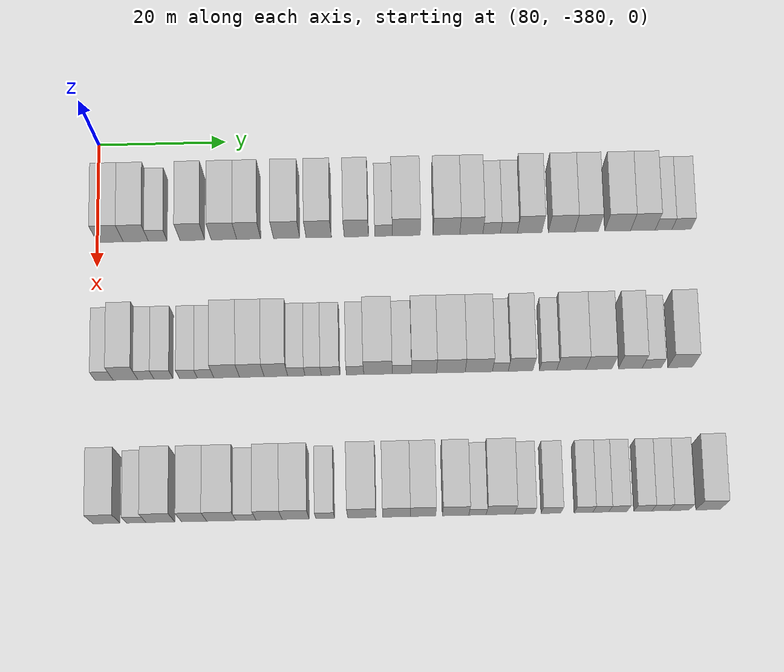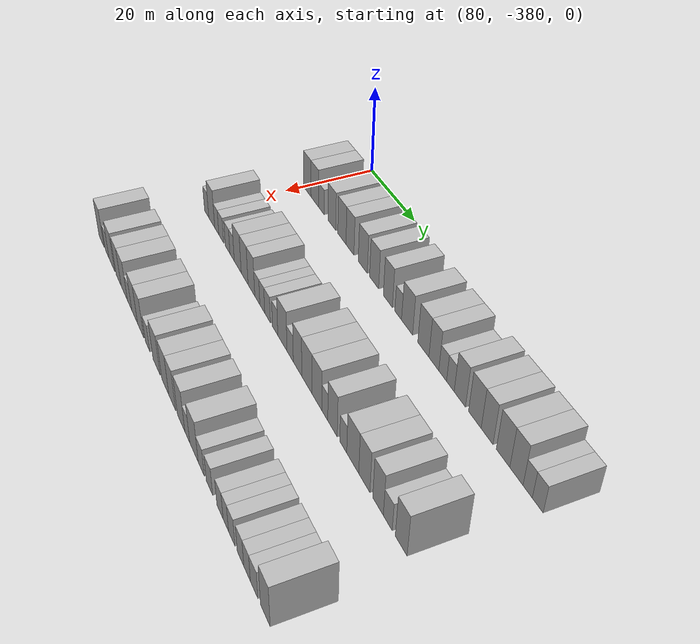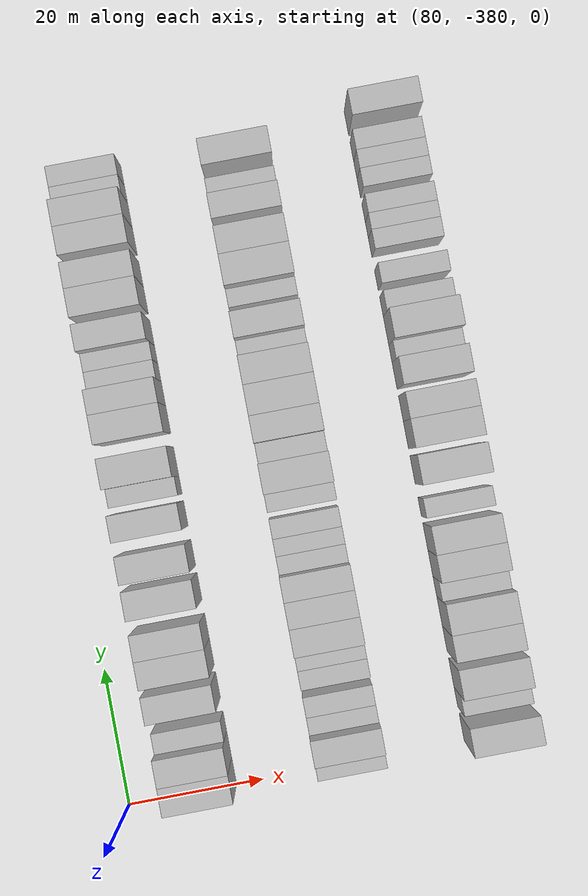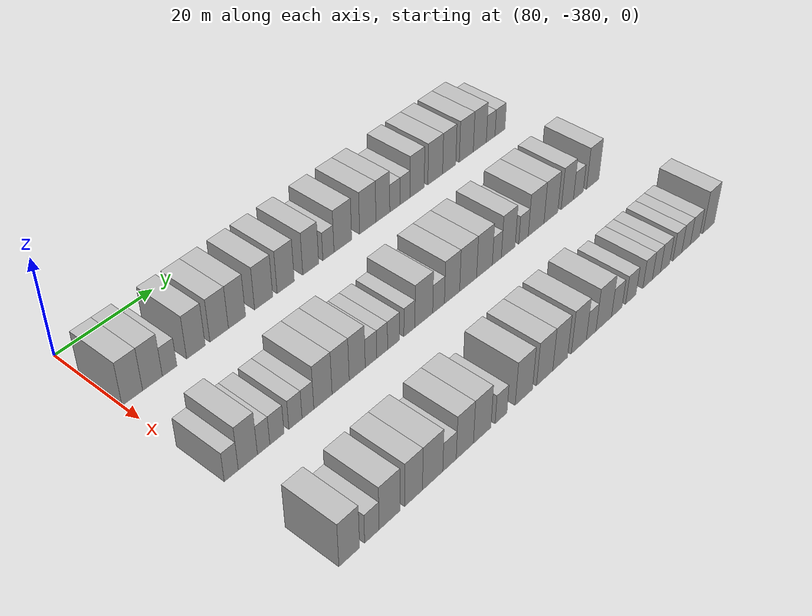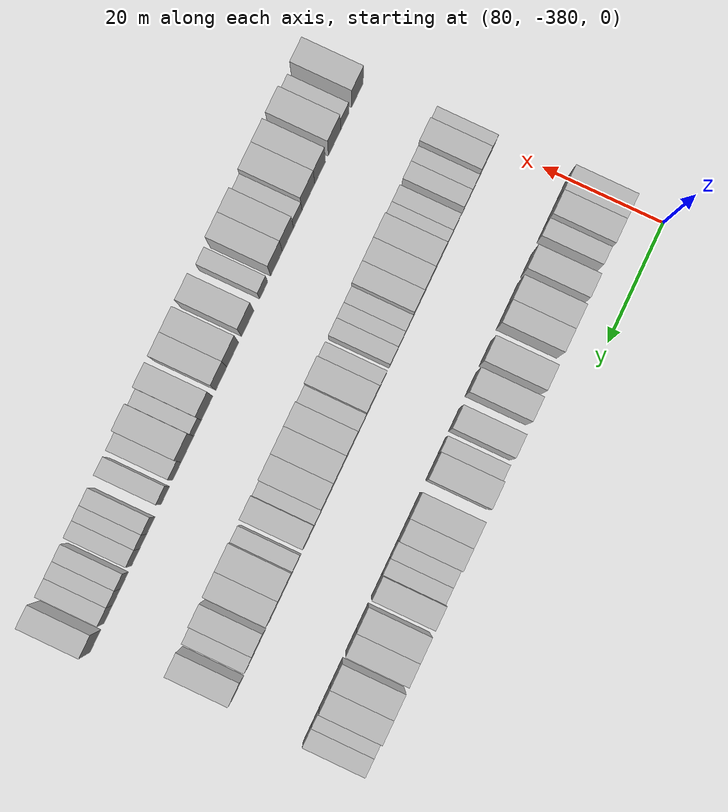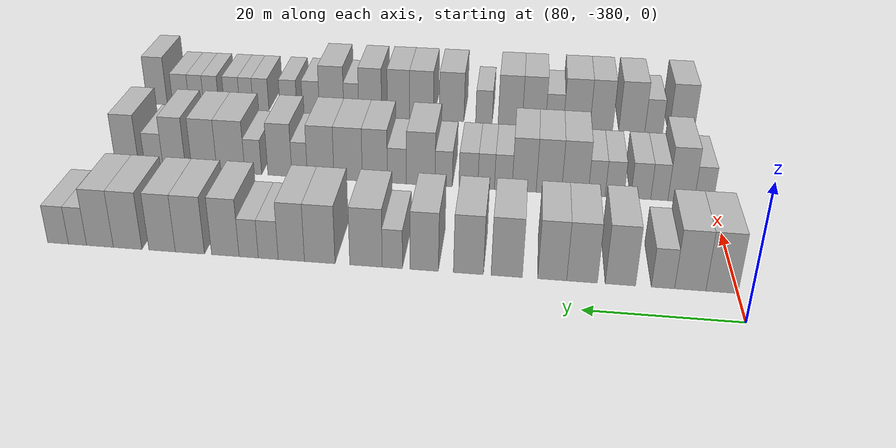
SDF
<sdf version="1.6">
 <world name="default">
  <model name="building_581">
   <static>1</static>
   <pose>91.0000 -377.9903 0 0.000000 0.000000 0.000000</pose>
   <link name="link">
    <pose>0 0 4.50 0 0 0</pose>
    <collision name="collision"><geometry><box><size>10.0000 4.0195 9.0000</size></box></geometry></collision>
    <visual name="visual">
     <cast_shadows>0</cast_shadows>
     <geometry><box><size>10.0000 4.0195 9.0000</size></box></geometry>
     <material>
      <script>
       <uri>model://HANNAS_wall/materials/scripts</uri>
       <uri>model://HANNAS_wall/materials/textures</uri>
       <name>vrc/HANNAS_wall</name>
      </script>
     </material>
    </visual>
   </link>
  </model>
  <model name="building_582">
   <static>1</static>
   <pose>91.0000 -374.0209 0 0.000000 0.000000 0.000000</pose>
   <link name="link">
    <pose>0 0 4.50 0 0 0</pose>
    <collision name="collision"><geometry><box><size>10.0000 3.9193 9.0000</size></box></geometry></collision>
    <visual name="visual">
     <cast_shadows>0</cast_shadows>
     <geometry><box><size>10.0000 3.9193 9.0000</size></box></geometry>
     <material>
      <script>
       <uri>model://HANNAS_wall/materials/scripts</uri>
       <uri>model://HANNAS_wall/materials/textures</uri>
       <name>vrc/HANNAS_wall</name>
      </script>
     </material>
    </visual>
   </link>
  </model>
  <model name="building_583">
   <static>1</static>
   <pose>91.0000 -370.5944 0 0.000000 0.000000 0.000000</pose>
   <link name="link">
    <pose>0 0 3.00 0 0 0</pose>
    <collision name="collision"><geometry><box><size>10.0000 2.9337 6.0000</size></box></geometry></collision>
    <visual name="visual">
     <cast_shadows>0</cast_shadows>
     <geometry><box><size>10.0000 2.9337 6.0000</size></box></geometry>
     <material>
      <script>
       <uri>model://HANNAS_wall/materials/scripts</uri>
       <uri>model://HANNAS_wall/materials/textures</uri>
       <name>vrc/HANNAS_wall</name>
      </script>
     </material>
    </visual>
   </link>
  </model>
  <model name="building_584">
   <static>1</static>
   <pose>91.0000 -365.1928 0 0.000000 0.000000 0.000000</pose>
   <link name="link">
    <pose>0 0 4.50 0 0 0</pose>
    <collision name="collision"><geometry><box><size>10.0000 3.8694 9.0000</size></box></geometry></collision>
    <visual name="visual">
     <cast_shadows>0</cast_shadows>
     <geometry><box><size>10.0000 3.8694 9.0000</size></box></geometry>
     <material>
      <script>
       <uri>model://HANNAS_wall/materials/scripts</uri>
       <uri>model://HANNAS_wall/materials/textures</uri>
       <name>vrc/HANNAS_wall</name>
      </script>
     </material>
    </visual>
   </link>
  </model>
  <model name="building_585">
   <static>1</static>
   <pose>91.0000 -360.2808 0 0.000000 0.000000 0.000000</pose>
   <link name="link">
    <pose>0 0 4.50 0 0 0</pose>
    <collision name="collision"><geometry><box><size>10.0000 3.9546 9.0000</size></box></geometry></collision>
    <visual name="visual">
     <cast_shadows>0</cast_shadows>
     <geometry><box><size>10.0000 3.9546 9.0000</size></box></geometry>
     <material>
      <script>
       <uri>model://HANNAS_wall/materials/scripts</uri>
       <uri>model://HANNAS_wall/materials/textures</uri>
       <name>vrc/HANNAS_wall</name>
      </script>
     </material>
    </visual>
   </link>
  </model>
  <model name="building_586">
   <static>1</static>
   <pose>91.0000 -356.4320 0 0.000000 0.000000 0.000000</pose>
   <link name="link">
    <pose>0 0 4.50 0 0 0</pose>
    <collision name="collision"><geometry><box><size>10.0000 3.7430 9.0000</size></box></geometry></collision>
    <visual name="visual">
     <cast_shadows>0</cast_shadows>
     <geometry><box><size>10.0000 3.7430 9.0000</size></box></geometry>
     <material>
      <script>
       <uri>model://HANNAS_wall/materials/scripts</uri>
       <uri>model://HANNAS_wall/materials/textures</uri>
       <name>vrc/HANNAS_wall</name>
      </script>
     </material>
    </visual>
   </link>
  </model>
  <model name="building_587">
   <static>1</static>
   <pose>91.0000 -350.5185 0 0.000000 0.000000 0.000000</pose>
   <link name="link">
    <pose>0 0 4.50 0 0 0</pose>
    <collision name="collision"><geometry><box><size>10.0000 4.0840 9.0000</size></box></geometry></collision>
    <visual name="visual">
     <cast_shadows>0</cast_shadows>
     <geometry><box><size>10.0000 4.0840 9.0000</size></box></geometry>
     <material>
      <script>
       <uri>model://HANNAS_wall/materials/scripts</uri>
       <uri>model://HANNAS_wall/materials/textures</uri>
       <name>vrc/HANNAS_wall</name>
      </script>
     </material>
    </visual>
   </link>
  </model>
  <model name="building_588">
   <static>1</static>
   <pose>91.0000 -345.4982 0 0.000000 0.000000 0.000000</pose>
   <link name="link">
    <pose>0 0 4.50 0 0 0</pose>
    <collision name="collision"><geometry><box><size>10.0000 3.9566 9.0000</size></box></geometry></collision>
    <visual name="visual">
     <cast_shadows>0</cast_shadows>
     <geometry><box><size>10.0000 3.9566 9.0000</size></box></geometry>
     <material>
      <script>
       <uri>model://HANNAS_wall/materials/scripts</uri>
       <uri>model://HANNAS_wall/materials/textures</uri>
       <name>vrc/HANNAS_wall</name>
      </script>
     </material>
    </visual>
   </link>
  </model>
  <model name="building_589">
   <static>1</static>
   <pose>91.0000 -339.6255 0 0.000000 0.000000 0.000000</pose>
   <link name="link">
    <pose>0 0 4.50 0 0 0</pose>
    <collision name="collision"><geometry><box><size>10.0000 3.7889 9.0000</size></box></geometry></collision>
    <visual name="visual">
     <cast_shadows>0</cast_shadows>
     <geometry><box><size>10.0000 3.7889 9.0000</size></box></geometry>
     <material>
      <script>
       <uri>model://HANNAS_wall/materials/scripts</uri>
       <uri>model://HANNAS_wall/materials/textures</uri>
       <name>vrc/HANNAS_wall</name>
      </script>
     </material>
    </visual>
   </link>
  </model>
  <model name="building_590">
   <static>1</static>
   <pose>91.0000 -335.3784 0 0.000000 0.000000 0.000000</pose>
   <link name="link">
    <pose>0 0 3.00 0 0 0</pose>
    <collision name="collision"><geometry><box><size>10.0000 2.7053 6.0000</size></box></geometry></collision>
    <visual name="visual">
     <cast_shadows>0</cast_shadows>
     <geometry><box><size>10.0000 2.7053 6.0000</size></box></geometry>
     <material>
      <script>
       <uri>model://HANNAS_wall/materials/scripts</uri>
       <uri>model://HANNAS_wall/materials/textures</uri>
       <name>vrc/HANNAS_wall</name>
      </script>
     </material>
    </visual>
   </link>
  </model>
  <model name="building_591">
   <static>1</static>
   <pose>91.0000 -331.8445 0 0.000000 0.000000 0.000000</pose>
   <link name="link">
    <pose>0 0 4.50 0 0 0</pose>
    <collision name="collision"><geometry><box><size>10.0000 4.3625 9.0000</size></box></geometry></collision>
    <visual name="visual">
     <cast_shadows>0</cast_shadows>
     <geometry><box><size>10.0000 4.3625 9.0000</size></box></geometry>
     <material>
      <script>
       <uri>model://HANNAS_wall/materials/scripts</uri>
       <uri>model://HANNAS_wall/materials/textures</uri>
       <name>vrc/HANNAS_wall</name>
      </script>
     </material>
    </visual>
   </link>
  </model>
  <model name="building_592">
   <static>1</static>
   <pose>91.0000 -325.5827 0 0.000000 0.000000 0.000000</pose>
   <link name="link">
    <pose>0 0 4.50 0 0 0</pose>
    <collision name="collision"><geometry><box><size>10.0000 4.1612 9.0000</size></box></geometry></collision>
    <visual name="visual">
     <cast_shadows>0</cast_shadows>
     <geometry><box><size>10.0000 4.1612 9.0000</size></box></geometry>
     <material>
      <script>
       <uri>model://HANNAS_wall/materials/scripts</uri>
       <uri>model://HANNAS_wall/materials/textures</uri>
       <name>vrc/HANNAS_wall</name>
      </script>
     </material>
    </visual>
   </link>
  </model>
  <model name="building_593">
   <static>1</static>
   <pose>91.0000 -321.7015 0 0.000000 0.000000 0.000000</pose>
   <link name="link">
    <pose>0 0 4.50 0 0 0</pose>
    <collision name="collision"><geometry><box><size>10.0000 3.6012 9.0000</size></box></geometry></collision>
    <visual name="visual">
     <cast_shadows>0</cast_shadows>
     <geometry><box><size>10.0000 3.6012 9.0000</size></box></geometry>
     <material>
      <script>
       <uri>model://HANNAS_wall/materials/scripts</uri>
       <uri>model://HANNAS_wall/materials/textures</uri>
       <name>vrc/HANNAS_wall</name>
      </script>
     </material>
    </visual>
   </link>
  </model>
  <model name="building_594">
   <static>1</static>
   <pose>91.0000 -318.5280 0 0.000000 0.000000 0.000000</pose>
   <link name="link">
    <pose>0 0 3.00 0 0 0</pose>
    <collision name="collision"><geometry><box><size>10.0000 2.7459 6.0000</size></box></geometry></collision>
    <visual name="visual">
     <cast_shadows>0</cast_shadows>
     <geometry><box><size>10.0000 2.7459 6.0000</size></box></geometry>
     <material>
      <script>
       <uri>model://HANNAS_wall/materials/scripts</uri>
       <uri>model://HANNAS_wall/materials/textures</uri>
       <name>vrc/HANNAS_wall</name>
      </script>
     </material>
    </visual>
   </link>
  </model>
  <model name="building_595">
   <static>1</static>
   <pose>91.0000 -315.8249 0 0.000000 0.000000 0.000000</pose>
   <link name="link">
    <pose>0 0 3.00 0 0 0</pose>
    <collision name="collision"><geometry><box><size>10.0000 2.6602 6.0000</size></box></geometry></collision>
    <visual name="visual">
     <cast_shadows>0</cast_shadows>
     <geometry><box><size>10.0000 2.6602 6.0000</size></box></geometry>
     <material>
      <script>
       <uri>model://HANNAS_wall/materials/scripts</uri>
       <uri>model://HANNAS_wall/materials/textures</uri>
       <name>vrc/HANNAS_wall</name>
      </script>
     </material>
    </visual>
   </link>
  </model>
  <model name="building_596">
   <static>1</static>
   <pose>91.0000 -312.5856 0 0.000000 0.000000 0.000000</pose>
   <link name="link">
    <pose>0 0 4.50 0 0 0</pose>
    <collision name="collision"><geometry><box><size>10.0000 3.8185 9.0000</size></box></geometry></collision>
    <visual name="visual">
     <cast_shadows>0</cast_shadows>
     <geometry><box><size>10.0000 3.8185 9.0000</size></box></geometry>
     <material>
      <script>
       <uri>model://HANNAS_wall/materials/scripts</uri>
       <uri>model://HANNAS_wall/materials/textures</uri>
       <name>vrc/HANNAS_wall</name>
      </script>
     </material>
    </visual>
   </link>
  </model>
  <model name="building_597">
   <static>1</static>
   <pose>91.0000 -307.6312 0 0.000000 0.000000 0.000000</pose>
   <link name="link">
    <pose>0 0 4.50 0 0 0</pose>
    <collision name="collision"><geometry><box><size>10.0000 4.0904 9.0000</size></box></geometry></collision>
    <visual name="visual">
     <cast_shadows>0</cast_shadows>
     <geometry><box><size>10.0000 4.0904 9.0000</size></box></geometry>
     <material>
      <script>
       <uri>model://HANNAS_wall/materials/scripts</uri>
       <uri>model://HANNAS_wall/materials/textures</uri>
       <name>vrc/HANNAS_wall</name>
      </script>
     </material>
    </visual>
   </link>
  </model>
  <model name="building_598">
   <static>1</static>
   <pose>91.0000 -303.7231 0 0.000000 0.000000 0.000000</pose>
   <link name="link">
    <pose>0 0 4.50 0 0 0</pose>
    <collision name="collision"><geometry><box><size>10.0000 3.7257 9.0000</size></box></geometry></collision>
    <visual name="visual">
     <cast_shadows>0</cast_shadows>
     <geometry><box><size>10.0000 3.7257 9.0000</size></box></geometry>
     <material>
      <script>
       <uri>model://HANNAS_wall/materials/scripts</uri>
       <uri>model://HANNAS_wall/materials/textures</uri>
       <name>vrc/HANNAS_wall</name>
      </script>
     </material>
    </visual>
   </link>
  </model>
  <model name="building_599">
   <static>1</static>
   <pose>91.0000 -298.8303 0 0.000000 0.000000 0.000000</pose>
   <link name="link">
    <pose>0 0 4.50 0 0 0</pose>
    <collision name="collision"><geometry><box><size>10.0000 4.0600 9.0000</size></box></geometry></collision>
    <visual name="visual">
     <cast_shadows>0</cast_shadows>
     <geometry><box><size>10.0000 4.0600 9.0000</size></box></geometry>
     <material>
      <script>
       <uri>model://HANNAS_wall/materials/scripts</uri>
       <uri>model://HANNAS_wall/materials/textures</uri>
       <name>vrc/HANNAS_wall</name>
      </script>
     </material>
    </visual>
   </link>
  </model>
  <model name="building_600">
   <static>1</static>
   <pose>91.0000 -294.8855 0 0.000000 0.000000 0.000000</pose>
   <link name="link">
    <pose>0 0 4.50 0 0 0</pose>
    <collision name="collision"><geometry><box><size>10.0000 3.8296 9.0000</size></box></geometry></collision>
    <visual name="visual">
     <cast_shadows>0</cast_shadows>
     <geometry><box><size>10.0000 3.8296 9.0000</size></box></geometry>
     <material>
      <script>
       <uri>model://HANNAS_wall/materials/scripts</uri>
       <uri>model://HANNAS_wall/materials/textures</uri>
       <name>vrc/HANNAS_wall</name>
      </script>
     </material>
    </visual>
   </link>
  </model>
  <model name="building_601">
   <static>1</static>
   <pose>91.0000 -291.6663 0 0.000000 0.000000 0.000000</pose>
   <link name="link">
    <pose>0 0 3.00 0 0 0</pose>
    <collision name="collision"><geometry><box><size>10.0000 2.6087 6.0000</size></box></geometry></collision>
    <visual name="visual">
     <cast_shadows>0</cast_shadows>
     <geometry><box><size>10.0000 2.6087 6.0000</size></box></geometry>
     <material>
      <script>
       <uri>model://HANNAS_wall/materials/scripts</uri>
       <uri>model://HANNAS_wall/materials/textures</uri>
       <name>vrc/HANNAS_wall</name>
      </script>
     </material>
    </visual>
   </link>
  </model>
  <model name="building_602">
   <static>1</static>
   <pose>91.0000 -288.8627 0 0.000000 0.000000 0.000000</pose>
   <link name="link">
    <pose>0 0 3.00 0 0 0</pose>
    <collision name="collision"><geometry><box><size>10.0000 2.9985 6.0000</size></box></geometry></collision>
    <visual name="visual">
     <cast_shadows>0</cast_shadows>
     <geometry><box><size>10.0000 2.9985 6.0000</size></box></geometry>
     <material>
      <script>
       <uri>model://HANNAS_wall/materials/scripts</uri>
       <uri>model://HANNAS_wall/materials/textures</uri>
       <name>vrc/HANNAS_wall</name>
      </script>
     </material>
    </visual>
   </link>
  </model>
  <model name="building_770">
   <static>1</static>
   <pose>113.0000 -378.6374 0 0.000000 0.000000 0.000000</pose>
   <link name="link">
    <pose>0 0 3.00 0 0 0</pose>
    <collision name="collision"><geometry><box><size>10.0000 2.7252 6.0000</size></box></geometry></collision>
    <visual name="visual">
     <cast_shadows>0</cast_shadows>
     <geometry><box><size>10.0000 2.7252 6.0000</size></box></geometry>
     <material>
      <script>
       <uri>model://HANNAS_wall/materials/scripts</uri>
       <uri>model://HANNAS_wall/materials/textures</uri>
       <name>vrc/HANNAS_wall</name>
      </script>
     </material>
    </visual>
   </link>
  </model>
  <model name="building_771">
   <static>1</static>
   <pose>113.0000 -375.3818 0 0.000000 0.000000 0.000000</pose>
   <link name="link">
    <pose>0 0 4.50 0 0 0</pose>
    <collision name="collision"><geometry><box><size>10.0000 3.7861 9.0000</size></box></geometry></collision>
    <visual name="visual">
     <cast_shadows>0</cast_shadows>
     <geometry><box><size>10.0000 3.7861 9.0000</size></box></geometry>
     <material>
      <script>
       <uri>model://HANNAS_wall/materials/scripts</uri>
       <uri>model://HANNAS_wall/materials/textures</uri>
       <name>vrc/HANNAS_wall</name>
      </script>
     </material>
    </visual>
   </link>
  </model>
  <model name="building_772">
   <static>1</static>
   <pose>113.0000 -372.2384 0 0.000000 0.000000 0.000000</pose>
   <link name="link">
    <pose>0 0 3.00 0 0 0</pose>
    <collision name="collision"><geometry><box><size>10.0000 2.5006 6.0000</size></box></geometry></collision>
    <visual name="visual">
     <cast_shadows>0</cast_shadows>
     <geometry><box><size>10.0000 2.5006 6.0000</size></box></geometry>
     <material>
      <script>
       <uri>model://HANNAS_wall/materials/scripts</uri>
       <uri>model://HANNAS_wall/materials/textures</uri>
       <name>vrc/HANNAS_wall</name>
      </script>
     </material>
    </visual>
   </link>
  </model>
  <model name="building_773">
   <static>1</static>
   <pose>113.0000 -369.5360 0 0.000000 0.000000 0.000000</pose>
   <link name="link">
    <pose>0 0 3.00 0 0 0</pose>
    <collision name="collision"><geometry><box><size>10.0000 2.9043 6.0000</size></box></geometry></collision>
    <visual name="visual">
     <cast_shadows>0</cast_shadows>
     <geometry><box><size>10.0000 2.9043 6.0000</size></box></geometry>
     <material>
      <script>
       <uri>model://HANNAS_wall/materials/scripts</uri>
       <uri>model://HANNAS_wall/materials/textures</uri>
       <name>vrc/HANNAS_wall</name>
      </script>
     </material>
    </visual>
   </link>
  </model>
  <model name="building_774">
   <static>1</static>
   <pose>113.0000 -365.7093 0 0.000000 0.000000 0.000000</pose>
   <link name="link">
    <pose>0 0 3.00 0 0 0</pose>
    <collision name="collision"><geometry><box><size>10.0000 2.7491 6.0000</size></box></geometry></collision>
    <visual name="visual">
     <cast_shadows>0</cast_shadows>
     <geometry><box><size>10.0000 2.7491 6.0000</size></box></geometry>
     <material>
      <script>
       <uri>model://HANNAS_wall/materials/scripts</uri>
       <uri>model://HANNAS_wall/materials/textures</uri>
       <name>vrc/HANNAS_wall</name>
      </script>
     </material>
    </visual>
   </link>
  </model>
  <model name="building_775">
   <static>1</static>
   <pose>113.0000 -363.0858 0 0.000000 0.000000 0.000000</pose>
   <link name="link">
    <pose>0 0 3.00 0 0 0</pose>
    <collision name="collision"><geometry><box><size>10.0000 2.4980 6.0000</size></box></geometry></collision>
    <visual name="visual">
     <cast_shadows>0</cast_shadows>
     <geometry><box><size>10.0000 2.4980 6.0000</size></box></geometry>
     <material>
      <script>
       <uri>model://HANNAS_wall/materials/scripts</uri>
       <uri>model://HANNAS_wall/materials/textures</uri>
       <name>vrc/HANNAS_wall</name>
      </script>
     </material>
    </visual>
   </link>
  </model>
  <model name="building_776">
   <static>1</static>
   <pose>113.0000 -359.8690 0 0.000000 0.000000 0.000000</pose>
   <link name="link">
    <pose>0 0 4.50 0 0 0</pose>
    <collision name="collision"><geometry><box><size>10.0000 3.9355 9.0000</size></box></geometry></collision>
    <visual name="visual">
     <cast_shadows>0</cast_shadows>
     <geometry><box><size>10.0000 3.9355 9.0000</size></box></geometry>
     <material>
      <script>
       <uri>model://HANNAS_wall/materials/scripts</uri>
       <uri>model://HANNAS_wall/materials/textures</uri>
       <name>vrc/HANNAS_wall</name>
      </script>
     </material>
    </visual>
   </link>
  </model>
  <model name="building_777">
   <static>1</static>
   <pose>113.0000 -356.0148 0 0.000000 0.000000 0.000000</pose>
   <link name="link">
    <pose>0 0 4.50 0 0 0</pose>
    <collision name="collision"><geometry><box><size>10.0000 3.7728 9.0000</size></box></geometry></collision>
    <visual name="visual">
     <cast_shadows>0</cast_shadows>
     <geometry><box><size>10.0000 3.7728 9.0000</size></box></geometry>
     <material>
      <script>
       <uri>model://HANNAS_wall/materials/scripts</uri>
       <uri>model://HANNAS_wall/materials/textures</uri>
       <name>vrc/HANNAS_wall</name>
      </script>
     </material>
    </visual>
   </link>
  </model>
  <model name="building_778">
   <static>1</static>
   <pose>113.0000 -352.3270 0 0.000000 0.000000 0.000000</pose>
   <link name="link">
    <pose>0 0 4.50 0 0 0</pose>
    <collision name="collision"><geometry><box><size>10.0000 3.6028 9.0000</size></box></geometry></collision>
    <visual name="visual">
     <cast_shadows>0</cast_shadows>
     <geometry><box><size>10.0000 3.6028 9.0000</size></box></geometry>
     <material>
      <script>
       <uri>model://HANNAS_wall/materials/scripts</uri>
       <uri>model://HANNAS_wall/materials/textures</uri>
       <name>vrc/HANNAS_wall</name>
      </script>
     </material>
    </visual>
   </link>
  </model>
  <model name="building_779">
   <static>1</static>
   <pose>113.0000 -349.2012 0 0.000000 0.000000 0.000000</pose>
   <link name="link">
    <pose>0 0 3.00 0 0 0</pose>
    <collision name="collision"><geometry><box><size>10.0000 2.6489 6.0000</size></box></geometry></collision>
    <visual name="visual">
     <cast_shadows>0</cast_shadows>
     <geometry><box><size>10.0000 2.6489 6.0000</size></box></geometry>
     <material>
      <script>
       <uri>model://HANNAS_wall/materials/scripts</uri>
       <uri>model://HANNAS_wall/materials/textures</uri>
       <name>vrc/HANNAS_wall</name>
      </script>
     </material>
    </visual>
   </link>
  </model>
  <model name="building_780">
   <static>1</static>
   <pose>113.0000 -346.6284 0 0.000000 0.000000 0.000000</pose>
   <link name="link">
    <pose>0 0 3.00 0 0 0</pose>
    <collision name="collision"><geometry><box><size>10.0000 2.4969 6.0000</size></box></geometry></collision>
    <visual name="visual">
     <cast_shadows>0</cast_shadows>
     <geometry><box><size>10.0000 2.4969 6.0000</size></box></geometry>
     <material>
      <script>
       <uri>model://HANNAS_wall/materials/scripts</uri>
       <uri>model://HANNAS_wall/materials/textures</uri>
       <name>vrc/HANNAS_wall</name>
      </script>
     </material>
    </visual>
   </link>
  </model>
  <model name="building_781">
   <static>1</static>
   <pose>113.0000 -343.9488 0 0.000000 0.000000 0.000000</pose>
   <link name="link">
    <pose>0 0 3.00 0 0 0</pose>
    <collision name="collision"><geometry><box><size>10.0000 2.8623 6.0000</size></box></geometry></collision>
    <visual name="visual">
     <cast_shadows>0</cast_shadows>
     <geometry><box><size>10.0000 2.8623 6.0000</size></box></geometry>
     <material>
      <script>
       <uri>model://HANNAS_wall/materials/scripts</uri>
       <uri>model://HANNAS_wall/materials/textures</uri>
       <name>vrc/HANNAS_wall</name>
      </script>
     </material>
    </visual>
   </link>
  </model>
  <model name="building_782">
   <static>1</static>
   <pose>113.0000 -340.1968 0 0.000000 0.000000 0.000000</pose>
   <link name="link">
    <pose>0 0 3.00 0 0 0</pose>
    <collision name="collision"><geometry><box><size>10.0000 2.6417 6.0000</size></box></geometry></collision>
    <visual name="visual">
     <cast_shadows>0</cast_shadows>
     <geometry><box><size>10.0000 2.6417 6.0000</size></box></geometry>
     <material>
      <script>
       <uri>model://HANNAS_wall/materials/scripts</uri>
       <uri>model://HANNAS_wall/materials/textures</uri>
       <name>vrc/HANNAS_wall</name>
      </script>
     </material>
    </visual>
   </link>
  </model>
  <model name="building_783">
   <static>1</static>
   <pose>113.0000 -336.6961 0 0.000000 0.000000 0.000000</pose>
   <link name="link">
    <pose>0 0 4.50 0 0 0</pose>
    <collision name="collision"><geometry><box><size>10.0000 4.3596 9.0000</size></box></geometry></collision>
    <visual name="visual">
     <cast_shadows>0</cast_shadows>
     <geometry><box><size>10.0000 4.3596 9.0000</size></box></geometry>
     <material>
      <script>
       <uri>model://HANNAS_wall/materials/scripts</uri>
       <uri>model://HANNAS_wall/materials/textures</uri>
       <name>vrc/HANNAS_wall</name>
      </script>
     </material>
    </visual>
   </link>
  </model>
  <model name="building_784">
   <static>1</static>
   <pose>113.0000 -333.0528 0 0.000000 0.000000 0.000000</pose>
   <link name="link">
    <pose>0 0 3.00 0 0 0</pose>
    <collision name="collision"><geometry><box><size>10.0000 2.9271 6.0000</size></box></geometry></collision>
    <visual name="visual">
     <cast_shadows>0</cast_shadows>
     <geometry><box><size>10.0000 2.9271 6.0000</size></box></geometry>
     <material>
      <script>
       <uri>model://HANNAS_wall/materials/scripts</uri>
       <uri>model://HANNAS_wall/materials/textures</uri>
       <name>vrc/HANNAS_wall</name>
      </script>
     </material>
    </visual>
   </link>
  </model>
  <model name="building_785">
   <static>1</static>
   <pose>113.0000 -329.6588 0 0.000000 0.000000 0.000000</pose>
   <link name="link">
    <pose>0 0 4.50 0 0 0</pose>
    <collision name="collision"><geometry><box><size>10.0000 3.8608 9.0000</size></box></geometry></collision>
    <visual name="visual">
     <cast_shadows>0</cast_shadows>
     <geometry><box><size>10.0000 3.8608 9.0000</size></box></geometry>
     <material>
      <script>
       <uri>model://HANNAS_wall/materials/scripts</uri>
       <uri>model://HANNAS_wall/materials/textures</uri>
       <name>vrc/HANNAS_wall</name>
      </script>
     </material>
    </visual>
   </link>
  </model>
  <model name="building_786">
   <static>1</static>
   <pose>113.0000 -325.5356 0 0.000000 0.000000 0.000000</pose>
   <link name="link">
    <pose>0 0 4.50 0 0 0</pose>
    <collision name="collision"><geometry><box><size>10.0000 4.3856 9.0000</size></box></geometry></collision>
    <visual name="visual">
     <cast_shadows>0</cast_shadows>
     <geometry><box><size>10.0000 4.3856 9.0000</size></box></geometry>
     <material>
      <script>
       <uri>model://HANNAS_wall/materials/scripts</uri>
       <uri>model://HANNAS_wall/materials/textures</uri>
       <name>vrc/HANNAS_wall</name>
      </script>
     </material>
    </visual>
   </link>
  </model>
  <model name="building_787">
   <static>1</static>
   <pose>113.0000 -321.2570 0 0.000000 0.000000 0.000000</pose>
   <link name="link">
    <pose>0 0 4.50 0 0 0</pose>
    <collision name="collision"><geometry><box><size>10.0000 4.1717 9.0000</size></box></geometry></collision>
    <visual name="visual">
     <cast_shadows>0</cast_shadows>
     <geometry><box><size>10.0000 4.1717 9.0000</size></box></geometry>
     <material>
      <script>
       <uri>model://HANNAS_wall/materials/scripts</uri>
       <uri>model://HANNAS_wall/materials/textures</uri>
       <name>vrc/HANNAS_wall</name>
      </script>
     </material>
    </visual>
   </link>
  </model>
  <model name="building_788">
   <static>1</static>
   <pose>113.0000 -317.9590 0 0.000000 0.000000 0.000000</pose>
   <link name="link">
    <pose>0 0 3.00 0 0 0</pose>
    <collision name="collision"><geometry><box><size>10.0000 2.4243 6.0000</size></box></geometry></collision>
    <visual name="visual">
     <cast_shadows>0</cast_shadows>
     <geometry><box><size>10.0000 2.4243 6.0000</size></box></geometry>
     <material>
      <script>
       <uri>model://HANNAS_wall/materials/scripts</uri>
       <uri>model://HANNAS_wall/materials/textures</uri>
       <name>vrc/HANNAS_wall</name>
      </script>
     </material>
    </visual>
   </link>
  </model>
  <model name="building_789">
   <static>1</static>
   <pose>113.0000 -314.8549 0 0.000000 0.000000 0.000000</pose>
   <link name="link">
    <pose>0 0 4.50 0 0 0</pose>
    <collision name="collision"><geometry><box><size>10.0000 3.7838 9.0000</size></box></geometry></collision>
    <visual name="visual">
     <cast_shadows>0</cast_shadows>
     <geometry><box><size>10.0000 3.7838 9.0000</size></box></geometry>
     <material>
      <script>
       <uri>model://HANNAS_wall/materials/scripts</uri>
       <uri>model://HANNAS_wall/materials/textures</uri>
       <name>vrc/HANNAS_wall</name>
      </script>
     </material>
    </visual>
   </link>
  </model>
  <model name="building_790">
   <static>1</static>
   <pose>113.0000 -310.6321 0 0.000000 0.000000 0.000000</pose>
   <link name="link">
    <pose>0 0 3.00 0 0 0</pose>
    <collision name="collision"><geometry><box><size>10.0000 2.6618 6.0000</size></box></geometry></collision>
    <visual name="visual">
     <cast_shadows>0</cast_shadows>
     <geometry><box><size>10.0000 2.6618 6.0000</size></box></geometry>
     <material>
      <script>
       <uri>model://HANNAS_wall/materials/scripts</uri>
       <uri>model://HANNAS_wall/materials/textures</uri>
       <name>vrc/HANNAS_wall</name>
      </script>
     </material>
    </visual>
   </link>
  </model>
  <model name="building_791">
   <static>1</static>
   <pose>113.0000 -307.0685 0 0.000000 0.000000 0.000000</pose>
   <link name="link">
    <pose>0 0 4.50 0 0 0</pose>
    <collision name="collision"><geometry><box><size>10.0000 4.4655 9.0000</size></box></geometry></collision>
    <visual name="visual">
     <cast_shadows>0</cast_shadows>
     <geometry><box><size>10.0000 4.4655 9.0000</size></box></geometry>
     <material>
      <script>
       <uri>model://HANNAS_wall/materials/scripts</uri>
       <uri>model://HANNAS_wall/materials/textures</uri>
       <name>vrc/HANNAS_wall</name>
      </script>
     </material>
    </visual>
   </link>
  </model>
  <model name="building_792">
   <static>1</static>
   <pose>113.0000 -302.8272 0 0.000000 0.000000 0.000000</pose>
   <link name="link">
    <pose>0 0 4.50 0 0 0</pose>
    <collision name="collision"><geometry><box><size>10.0000 4.0172 9.0000</size></box></geometry></collision>
    <visual name="visual">
     <cast_shadows>0</cast_shadows>
     <geometry><box><size>10.0000 4.0172 9.0000</size></box></geometry>
     <material>
      <script>
       <uri>model://HANNAS_wall/materials/scripts</uri>
       <uri>model://HANNAS_wall/materials/textures</uri>
       <name>vrc/HANNAS_wall</name>
      </script>
     </material>
    </visual>
   </link>
  </model>
  <model name="building_793">
   <static>1</static>
   <pose>113.0000 -298.0028 0 0.000000 0.000000 0.000000</pose>
   <link name="link">
    <pose>0 0 4.50 0 0 0</pose>
    <collision name="collision"><geometry><box><size>10.0000 3.6315 9.0000</size></box></geometry></collision>
    <visual name="visual">
     <cast_shadows>0</cast_shadows>
     <geometry><box><size>10.0000 3.6315 9.0000</size></box></geometry>
     <material>
      <script>
       <uri>model://HANNAS_wall/materials/scripts</uri>
       <uri>model://HANNAS_wall/materials/textures</uri>
       <name>vrc/HANNAS_wall</name>
      </script>
     </material>
    </visual>
   </link>
  </model>
  <model name="building_794">
   <static>1</static>
   <pose>113.0000 -294.7080 0 0.000000 0.000000 0.000000</pose>
   <link name="link">
    <pose>0 0 3.00 0 0 0</pose>
    <collision name="collision"><geometry><box><size>10.0000 2.9582 6.0000</size></box></geometry></collision>
    <visual name="visual">
     <cast_shadows>0</cast_shadows>
     <geometry><box><size>10.0000 2.9582 6.0000</size></box></geometry>
     <material>
      <script>
       <uri>model://HANNAS_wall/materials/scripts</uri>
       <uri>model://HANNAS_wall/materials/textures</uri>
       <name>vrc/HANNAS_wall</name>
      </script>
     </material>
    </visual>
   </link>
  </model>
  <model name="building_795">
   <static>1</static>
   <pose>113.0000 -290.3355 0 0.000000 0.000000 0.000000</pose>
   <link name="link">
    <pose>0 0 4.50 0 0 0</pose>
    <collision name="collision"><geometry><box><size>10.0000 3.7868 9.0000</size></box></geometry></collision>
    <visual name="visual">
     <cast_shadows>0</cast_shadows>
     <geometry><box><size>10.0000 3.7868 9.0000</size></box></geometry>
     <material>
      <script>
       <uri>model://HANNAS_wall/materials/scripts</uri>
       <uri>model://HANNAS_wall/materials/textures</uri>
       <name>vrc/HANNAS_wall</name>
      </script>
     </material>
    </visual>
   </link>
  </model>
  <model name="building_955">
   <static>1</static>
   <pose>135.0000 -377.9623 0 0.000000 0.000000 0.000000</pose>
   <link name="link">
    <pose>0 0 4.50 0 0 0</pose>
    <collision name="collision"><geometry><box><size>10.0000 4.0755 9.0000</size></box></geometry></collision>
    <visual name="visual">
     <cast_shadows>0</cast_shadows>
     <geometry><box><size>10.0000 4.0755 9.0000</size></box></geometry>
     <material>
      <script>
       <uri>model://HANNAS_wall/materials/scripts</uri>
       <uri>model://HANNAS_wall/materials/textures</uri>
       <name>vrc/HANNAS_wall</name>
      </script>
     </material>
    </visual>
   </link>
  </model>
  <model name="building_956">
   <static>1</static>
   <pose>135.0000 -373.4594 0 0.000000 0.000000 0.000000</pose>
   <link name="link">
    <pose>0 0 3.00 0 0 0</pose>
    <collision name="collision"><geometry><box><size>10.0000 2.9302 6.0000</size></box></geometry></collision>
    <visual name="visual">
     <cast_shadows>0</cast_shadows>
     <geometry><box><size>10.0000 2.9302 6.0000</size></box></geometry>
     <material>
      <script>
       <uri>model://HANNAS_wall/materials/scripts</uri>
       <uri>model://HANNAS_wall/materials/textures</uri>
       <name>vrc/HANNAS_wall</name>
      </script>
     </material>
    </visual>
   </link>
  </model>
  <model name="building_957">
   <static>1</static>
   <pose>135.0000 -369.8457 0 0.000000 0.000000 0.000000</pose>
   <link name="link">
    <pose>0 0 4.50 0 0 0</pose>
    <collision name="collision"><geometry><box><size>10.0000 4.2971 9.0000</size></box></geometry></collision>
    <visual name="visual">
     <cast_shadows>0</cast_shadows>
     <geometry><box><size>10.0000 4.2971 9.0000</size></box></geometry>
     <material>
      <script>
       <uri>model://HANNAS_wall/materials/scripts</uri>
       <uri>model://HANNAS_wall/materials/textures</uri>
       <name>vrc/HANNAS_wall</name>
      </script>
     </material>
    </visual>
   </link>
  </model>
  <model name="building_958">
   <static>1</static>
   <pose>135.0000 -364.8009 0 0.000000 0.000000 0.000000</pose>
   <link name="link">
    <pose>0 0 4.50 0 0 0</pose>
    <collision name="collision"><geometry><box><size>10.0000 3.7926 9.0000</size></box></geometry></collision>
    <visual name="visual">
     <cast_shadows>0</cast_shadows>
     <geometry><box><size>10.0000 3.7926 9.0000</size></box></geometry>
     <material>
      <script>
       <uri>model://HANNAS_wall/materials/scripts</uri>
       <uri>model://HANNAS_wall/materials/textures</uri>
       <name>vrc/HANNAS_wall</name>
      </script>
     </material>
    </visual>
   </link>
  </model>
  <model name="building_959">
   <static>1</static>
   <pose>135.0000 -360.6914 0 0.000000 0.000000 0.000000</pose>
   <link name="link">
    <pose>0 0 4.50 0 0 0</pose>
    <collision name="collision"><geometry><box><size>10.0000 4.4263 9.0000</size></box></geometry></collision>
    <visual name="visual">
     <cast_shadows>0</cast_shadows>
     <geometry><box><size>10.0000 4.4263 9.0000</size></box></geometry>
     <material>
      <script>
       <uri>model://HANNAS_wall/materials/scripts</uri>
       <uri>model://HANNAS_wall/materials/textures</uri>
       <name>vrc/HANNAS_wall</name>
      </script>
     </material>
    </visual>
   </link>
  </model>
  <model name="building_960">
   <static>1</static>
   <pose>135.0000 -356.9814 0 0.000000 0.000000 0.000000</pose>
   <link name="link">
    <pose>0 0 3.00 0 0 0</pose>
    <collision name="collision"><geometry><box><size>10.0000 2.9936 6.0000</size></box></geometry></collision>
    <visual name="visual">
     <cast_shadows>0</cast_shadows>
     <geometry><box><size>10.0000 2.9936 6.0000</size></box></geometry>
     <material>
      <script>
       <uri>model://HANNAS_wall/materials/scripts</uri>
       <uri>model://HANNAS_wall/materials/textures</uri>
       <name>vrc/HANNAS_wall</name>
      </script>
     </material>
    </visual>
   </link>
  </model>
  <model name="building_961">
   <static>1</static>
   <pose>135.0000 -353.5240 0 0.000000 0.000000 0.000000</pose>
   <link name="link">
    <pose>0 0 4.50 0 0 0</pose>
    <collision name="collision"><geometry><box><size>10.0000 3.9211 9.0000</size></box></geometry></collision>
    <visual name="visual">
     <cast_shadows>0</cast_shadows>
     <geometry><box><size>10.0000 3.9211 9.0000</size></box></geometry>
     <material>
      <script>
       <uri>model://HANNAS_wall/materials/scripts</uri>
       <uri>model://HANNAS_wall/materials/textures</uri>
       <name>vrc/HANNAS_wall</name>
      </script>
     </material>
    </visual>
   </link>
  </model>
  <model name="building_962">
   <static>1</static>
   <pose>135.0000 -349.5242 0 0.000000 0.000000 0.000000</pose>
   <link name="link">
    <pose>0 0 4.50 0 0 0</pose>
    <collision name="collision"><geometry><box><size>10.0000 4.0786 9.0000</size></box></geometry></collision>
    <visual name="visual">
     <cast_shadows>0</cast_shadows>
     <geometry><box><size>10.0000 4.0786 9.0000</size></box></geometry>
     <material>
      <script>
       <uri>model://HANNAS_wall/materials/scripts</uri>
       <uri>model://HANNAS_wall/materials/textures</uri>
       <name>vrc/HANNAS_wall</name>
      </script>
     </material>
    </visual>
   </link>
  </model>
  <model name="building_963">
   <static>1</static>
   <pose>135.0000 -345.0728 0 0.000000 0.000000 0.000000</pose>
   <link name="link">
    <pose>0 0 3.00 0 0 0</pose>
    <collision name="collision"><geometry><box><size>10.0000 2.8241 6.0000</size></box></geometry></collision>
    <visual name="visual">
     <cast_shadows>0</cast_shadows>
     <geometry><box><size>10.0000 2.8241 6.0000</size></box></geometry>
     <material>
      <script>
       <uri>model://HANNAS_wall/materials/scripts</uri>
       <uri>model://HANNAS_wall/materials/textures</uri>
       <name>vrc/HANNAS_wall</name>
      </script>
     </material>
    </visual>
   </link>
  </model>
  <model name="building_964">
   <static>1</static>
   <pose>135.0000 -339.5324 0 0.000000 0.000000 0.000000</pose>
   <link name="link">
    <pose>0 0 4.50 0 0 0</pose>
    <collision name="collision"><geometry><box><size>10.0000 4.2566 9.0000</size></box></geometry></collision>
    <visual name="visual">
     <cast_shadows>0</cast_shadows>
     <geometry><box><size>10.0000 4.2566 9.0000</size></box></geometry>
     <material>
      <script>
       <uri>model://HANNAS_wall/materials/scripts</uri>
       <uri>model://HANNAS_wall/materials/textures</uri>
       <name>vrc/HANNAS_wall</name>
      </script>
     </material>
    </visual>
   </link>
  </model>
  <model name="building_965">
   <static>1</static>
   <pose>135.0000 -334.3466 0 0.000000 0.000000 0.000000</pose>
   <link name="link">
    <pose>0 0 4.50 0 0 0</pose>
    <collision name="collision"><geometry><box><size>10.0000 4.1150 9.0000</size></box></geometry></collision>
    <visual name="visual">
     <cast_shadows>0</cast_shadows>
     <geometry><box><size>10.0000 4.1150 9.0000</size></box></geometry>
     <material>
      <script>
       <uri>model://HANNAS_wall/materials/scripts</uri>
       <uri>model://HANNAS_wall/materials/textures</uri>
       <name>vrc/HANNAS_wall</name>
      </script>
     </material>
    </visual>
   </link>
  </model>
  <model name="building_966">
   <static>1</static>
   <pose>135.0000 -330.3747 0 0.000000 0.000000 0.000000</pose>
   <link name="link">
    <pose>0 0 4.50 0 0 0</pose>
    <collision name="collision"><geometry><box><size>10.0000 3.8287 9.0000</size></box></geometry></collision>
    <visual name="visual">
     <cast_shadows>0</cast_shadows>
     <geometry><box><size>10.0000 3.8287 9.0000</size></box></geometry>
     <material>
      <script>
       <uri>model://HANNAS_wall/materials/scripts</uri>
       <uri>model://HANNAS_wall/materials/textures</uri>
       <name>vrc/HANNAS_wall</name>
      </script>
     </material>
    </visual>
   </link>
  </model>
  <model name="building_967">
   <static>1</static>
   <pose>135.0000 -325.4717 0 0.000000 0.000000 0.000000</pose>
   <link name="link">
    <pose>0 0 4.50 0 0 0</pose>
    <collision name="collision"><geometry><box><size>10.0000 3.9773 9.0000</size></box></geometry></collision>
    <visual name="visual">
     <cast_shadows>0</cast_shadows>
     <geometry><box><size>10.0000 3.9773 9.0000</size></box></geometry>
     <material>
      <script>
       <uri>model://HANNAS_wall/materials/scripts</uri>
       <uri>model://HANNAS_wall/materials/textures</uri>
       <name>vrc/HANNAS_wall</name>
      </script>
     </material>
    </visual>
   </link>
  </model>
  <model name="building_968">
   <static>1</static>
   <pose>135.0000 -322.1781 0 0.000000 0.000000 0.000000</pose>
   <link name="link">
    <pose>0 0 3.00 0 0 0</pose>
    <collision name="collision"><geometry><box><size>10.0000 2.6099 6.0000</size></box></geometry></collision>
    <visual name="visual">
     <cast_shadows>0</cast_shadows>
     <geometry><box><size>10.0000 2.6099 6.0000</size></box></geometry>
     <material>
      <script>
       <uri>model://HANNAS_wall/materials/scripts</uri>
       <uri>model://HANNAS_wall/materials/textures</uri>
       <name>vrc/HANNAS_wall</name>
      </script>
     </material>
    </visual>
   </link>
  </model>
  <model name="building_969">
   <static>1</static>
   <pose>135.0000 -318.7255 0 0.000000 0.000000 0.000000</pose>
   <link name="link">
    <pose>0 0 4.50 0 0 0</pose>
    <collision name="collision"><geometry><box><size>10.0000 4.2954 9.0000</size></box></geometry></collision>
    <visual name="visual">
     <cast_shadows>0</cast_shadows>
     <geometry><box><size>10.0000 4.2954 9.0000</size></box></geometry>
     <material>
      <script>
       <uri>model://HANNAS_wall/materials/scripts</uri>
       <uri>model://HANNAS_wall/materials/textures</uri>
       <name>vrc/HANNAS_wall</name>
      </script>
     </material>
    </visual>
   </link>
  </model>
  <model name="building_970">
   <static>1</static>
   <pose>135.0000 -315.0861 0 0.000000 0.000000 0.000000</pose>
   <link name="link">
    <pose>0 0 3.00 0 0 0</pose>
    <collision name="collision"><geometry><box><size>10.0000 2.9832 6.0000</size></box></geometry></collision>
    <visual name="visual">
     <cast_shadows>0</cast_shadows>
     <geometry><box><size>10.0000 2.9832 6.0000</size></box></geometry>
     <material>
      <script>
       <uri>model://HANNAS_wall/materials/scripts</uri>
       <uri>model://HANNAS_wall/materials/textures</uri>
       <name>vrc/HANNAS_wall</name>
      </script>
     </material>
    </visual>
   </link>
  </model>
  <model name="building_971">
   <static>1</static>
   <pose>135.0000 -311.0990 0 0.000000 0.000000 0.000000</pose>
   <link name="link">
    <pose>0 0 3.00 0 0 0</pose>
    <collision name="collision"><geometry><box><size>10.0000 2.9911 6.0000</size></box></geometry></collision>
    <visual name="visual">
     <cast_shadows>0</cast_shadows>
     <geometry><box><size>10.0000 2.9911 6.0000</size></box></geometry>
     <material>
      <script>
       <uri>model://HANNAS_wall/materials/scripts</uri>
       <uri>model://HANNAS_wall/materials/textures</uri>
       <name>vrc/HANNAS_wall</name>
      </script>
     </material>
    </visual>
   </link>
  </model>
  <model name="building_972">
   <static>1</static>
   <pose>135.0000 -306.1986 0 0.000000 0.000000 0.000000</pose>
   <link name="link">
    <pose>0 0 3.00 0 0 0</pose>
    <collision name="collision"><geometry><box><size>10.0000 2.8097 6.0000</size></box></geometry></collision>
    <visual name="visual">
     <cast_shadows>0</cast_shadows>
     <geometry><box><size>10.0000 2.8097 6.0000</size></box></geometry>
     <material>
      <script>
       <uri>model://HANNAS_wall/materials/scripts</uri>
       <uri>model://HANNAS_wall/materials/textures</uri>
       <name>vrc/HANNAS_wall</name>
      </script>
     </material>
    </visual>
   </link>
  </model>
  <model name="building_973">
   <static>1</static>
   <pose>135.0000 -303.5915 0 0.000000 0.000000 0.000000</pose>
   <link name="link">
    <pose>0 0 3.00 0 0 0</pose>
    <collision name="collision"><geometry><box><size>10.0000 2.4046 6.0000</size></box></geometry></collision>
    <visual name="visual">
     <cast_shadows>0</cast_shadows>
     <geometry><box><size>10.0000 2.4046 6.0000</size></box></geometry>
     <material>
      <script>
       <uri>model://HANNAS_wall/materials/scripts</uri>
       <uri>model://HANNAS_wall/materials/textures</uri>
       <name>vrc/HANNAS_wall</name>
      </script>
     </material>
    </visual>
   </link>
  </model>
  <model name="building_974">
   <static>1</static>
   <pose>135.0000 -301.0071 0 0.000000 0.000000 0.000000</pose>
   <link name="link">
    <pose>0 0 3.00 0 0 0</pose>
    <collision name="collision"><geometry><box><size>10.0000 2.7642 6.0000</size></box></geometry></collision>
    <visual name="visual">
     <cast_shadows>0</cast_shadows>
     <geometry><box><size>10.0000 2.7642 6.0000</size></box></geometry>
     <material>
      <script>
       <uri>model://HANNAS_wall/materials/scripts</uri>
       <uri>model://HANNAS_wall/materials/textures</uri>
       <name>vrc/HANNAS_wall</name>
      </script>
     </material>
    </visual>
   </link>
  </model>
  <model name="building_975">
   <static>1</static>
   <pose>135.0000 -297.2618 0 0.000000 0.000000 0.000000</pose>
   <link name="link">
    <pose>0 0 3.00 0 0 0</pose>
    <collision name="collision"><geometry><box><size>10.0000 2.7264 6.0000</size></box></geometry></collision>
    <visual name="visual">
     <cast_shadows>0</cast_shadows>
     <geometry><box><size>10.0000 2.7264 6.0000</size></box></geometry>
     <material>
      <script>
       <uri>model://HANNAS_wall/materials/scripts</uri>
       <uri>model://HANNAS_wall/materials/textures</uri>
       <name>vrc/HANNAS_wall</name>
      </script>
     </material>
    </visual>
   </link>
  </model>
  <model name="building_976">
   <static>1</static>
   <pose>135.0000 -294.5631 0 0.000000 0.000000 0.000000</pose>
   <link name="link">
    <pose>0 0 3.00 0 0 0</pose>
    <collision name="collision"><geometry><box><size>10.0000 2.6709 6.0000</size></box></geometry></collision>
    <visual name="visual">
     <cast_shadows>0</cast_shadows>
     <geometry><box><size>10.0000 2.6709 6.0000</size></box></geometry>
     <material>
      <script>
       <uri>model://HANNAS_wall/materials/scripts</uri>
       <uri>model://HANNAS_wall/materials/textures</uri>
       <name>vrc/HANNAS_wall</name>
      </script>
     </material>
    </visual>
   </link>
  </model>
  <model name="building_977">
   <static>1</static>
   <pose>135.0000 -291.7376 0 0.000000 0.000000 0.000000</pose>
   <link name="link">
    <pose>0 0 3.00 0 0 0</pose>
    <collision name="collision"><geometry><box><size>10.0000 2.9801 6.0000</size></box></geometry></collision>
    <visual name="visual">
     <cast_shadows>0</cast_shadows>
     <geometry><box><size>10.0000 2.9801 6.0000</size></box></geometry>
     <material>
      <script>
       <uri>model://HANNAS_wall/materials/scripts</uri>
       <uri>model://HANNAS_wall/materials/textures</uri>
       <name>vrc/HANNAS_wall</name>
      </script>
     </material>
    </visual>
   </link>
  </model>
  <model name="building_978">
   <static>1</static>
   <pose>135.0000 -287.4033 0 0.000000 0.000000 0.000000</pose>
   <link name="link">
    <pose>0 0 4.50 0 0 0</pose>
    <collision name="collision"><geometry><box><size>10.0000 3.6886 9.0000</size></box></geometry></collision>
    <visual name="visual">
     <cast_shadows>0</cast_shadows>
     <geometry><box><size>10.0000 3.6886 9.0000</size></box></geometry>
     <material>
      <script>
       <uri>model://HANNAS_wall/materials/scripts</uri>
       <uri>model://HANNAS_wall/materials/textures</uri>
       <name>vrc/HANNAS_wall</name>
      </script>
     </material>
    </visual>
   </link>
  </model>
 </world>
</sdf>
